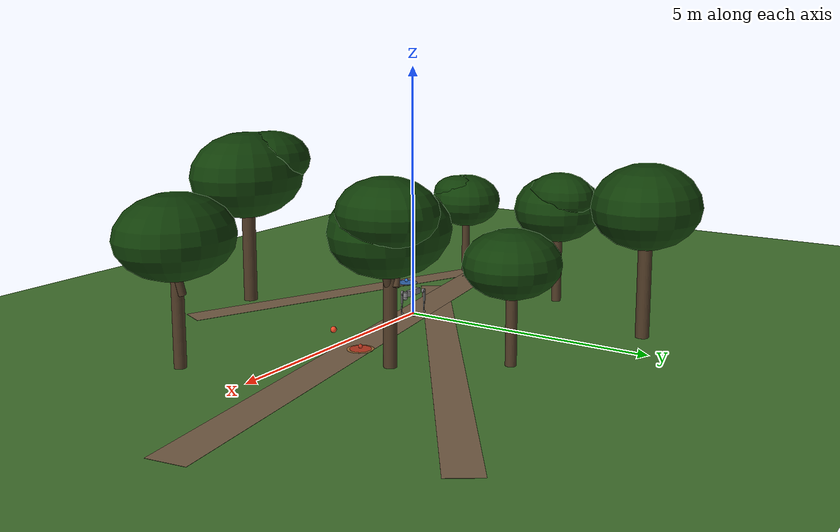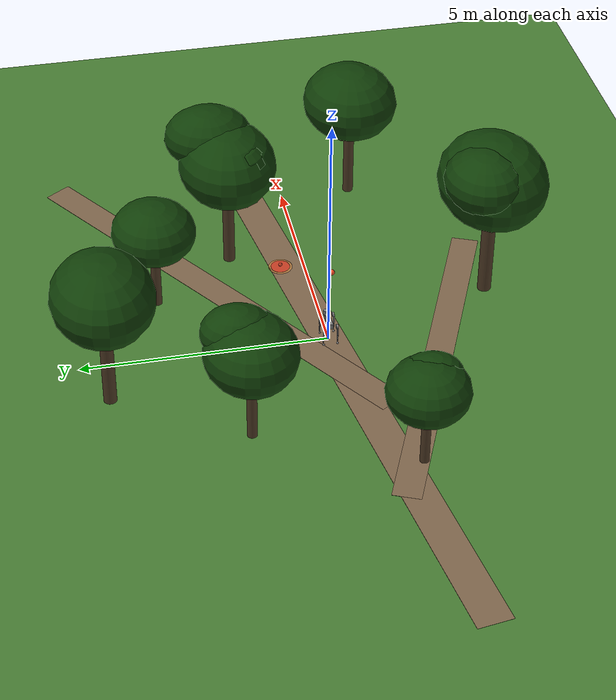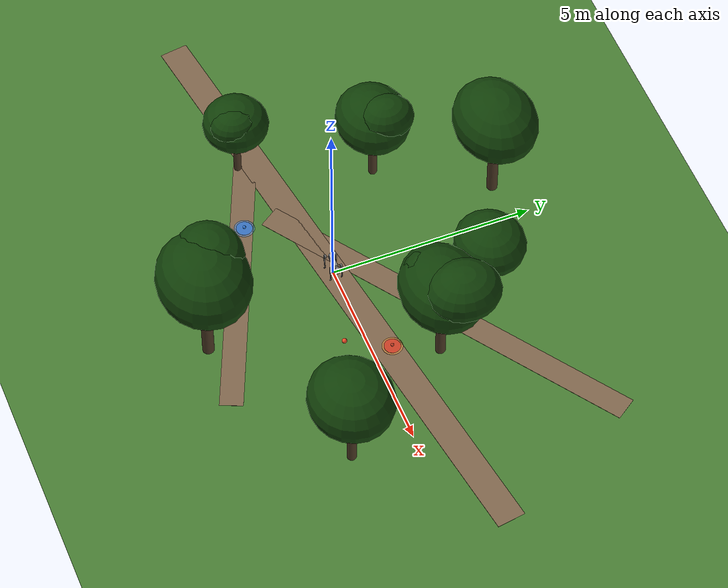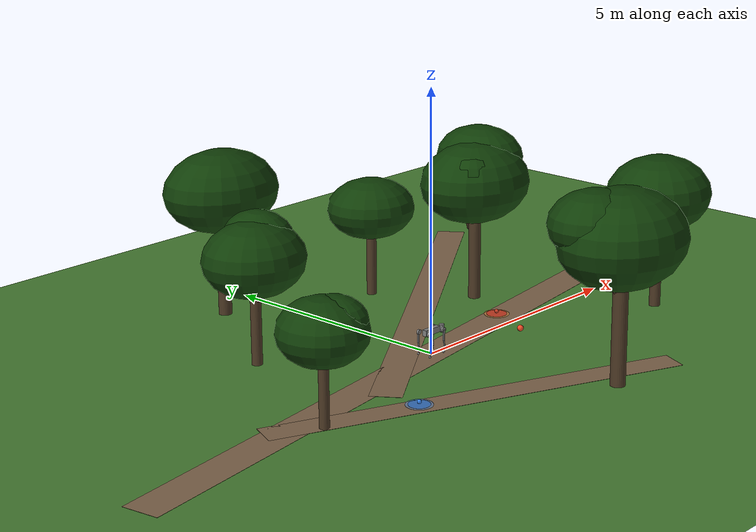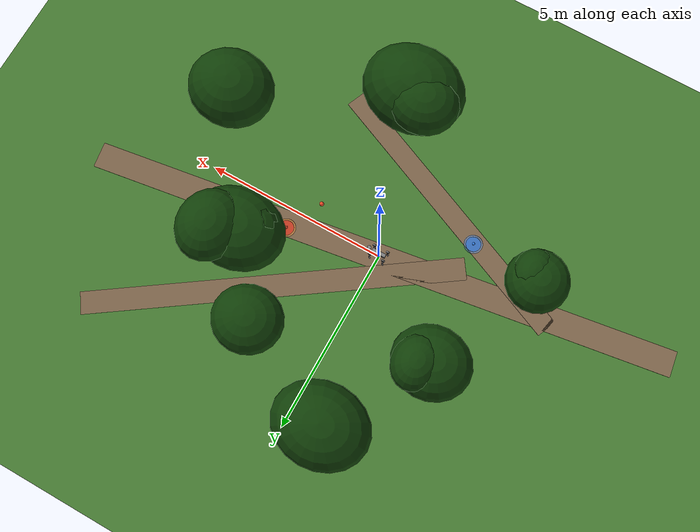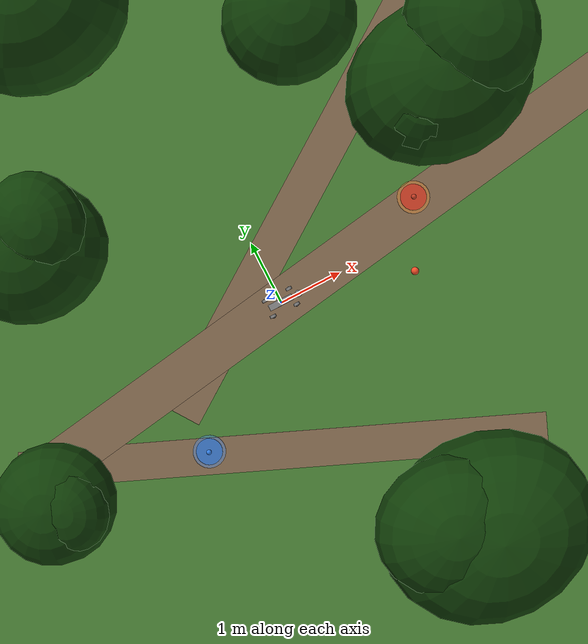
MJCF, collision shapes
<?xml version="1.0" encoding="utf-8"?>
<mujoco model="go2_outdoor">
  <!-- meshdir points to go2/assets where the .obj files live -->
  <compiler angle="radian" meshdir="go2/assets" autolimits="true"/>

  <include file="go2/go2.xml"/>

  <option timestep="0.002" gravity="0 0 -9.81" integrator="implicitfast">
    <flag contact="enable"/>
  </option>

  <statistic center="0 0 0.5" extent="6"/>

  <visual>
    <headlight diffuse="0.3 0.3 0.3" ambient="0.2 0.2 0.2" specular="0.1 0.1 0.1"/>
    <rgba haze="0.35 0.45 0.35 1"/>
    <quality shadowsize="4096"/>
    <map znear="0.01" zfar="100" haze="0.3"/>
    <global azimuth="-140" elevation="-25" offwidth="1920" offheight="1080"/>
  </visual>

  <asset>
    <!-- Sky -->
    <texture type="skybox" builtin="gradient" rgb1="0.45 0.60 0.80" rgb2="0.75 0.85 0.95"
      width="512" height="3072"/>

    <!-- Grass ground -->
    <texture name="grass_tex" type="2d" builtin="flat" rgb1="0.28 0.49 0.20" rgb2="0.22 0.42 0.16"
      width="512" height="512" mark="random" markrgb="0.32 0.55 0.24" random="0.05"/>
    <material name="grass_mat" texture="grass_tex" texrepeat="30 30" texuniform="false"
      reflectance="0.05" rgba="1 1 1 1"/>

    <!-- Dirt path -->
    <texture name="dirt_tex" type="2d" builtin="flat" rgb1="0.50 0.40 0.30" rgb2="0.45 0.36 0.28"
      width="256" height="256" mark="random" markrgb="0.55 0.45 0.35" random="0.08"/>
    <material name="dirt_mat" texture="dirt_tex" texrepeat="8 8" reflectance="0.02"/>

    <!-- Tree bark -->
    <texture name="bark_tex" type="2d" builtin="flat" rgb1="0.30 0.22 0.14" rgb2="0.25 0.18 0.12"
      width="128" height="128" mark="random" markrgb="0.35 0.25 0.16" random="0.1"/>
    <material name="bark_mat" texture="bark_tex" texrepeat="2 4" reflectance="0.03"/>

    <!-- Leaves / canopy -->
    <texture name="leaf_tex" type="2d" builtin="flat" rgb1="0.22 0.45 0.15" rgb2="0.18 0.38 0.12"
      width="256" height="256" mark="random" markrgb="0.28 0.52 0.20" random="0.15"/>
    <material name="leaf_mat" texture="leaf_tex" texrepeat="3 3" reflectance="0.08"
      rgba="0.30 0.55 0.22 0.92"/>

    <!-- Goal/waypoint marker -->
    <material name="marker_mat" rgba="0.9 0.25 0.15 0.8" reflectance="0.3" shininess="0.5"/>
    <material name="marker_glow_mat" rgba="1.0 0.6 0.2 0.4" reflectance="0.1"/>
  </asset>

  <worldbody>
    <!-- ============== LIGHTING ============== -->
    <!-- Sun - warm directional light -->
    <light name="sun" pos="5 -3 8" dir="-0.4 0.3 -0.8" diffuse="1.0 0.95 0.85"
      specular="0.4 0.38 0.35" directional="true" castshadow="true"/>
    <!-- Ambient fill -->
    <light name="fill" pos="-3 4 5" dir="0.3 -0.3 -0.7" diffuse="0.25 0.30 0.35"
      specular="0.05 0.05 0.05" directional="true" castshadow="false"/>

    <!-- ============== TERRAIN ============== -->
    <!-- Main grass ground plane -->
    <geom name="ground" type="plane" size="15 15 0.5" material="grass_mat"
      friction="1.0 0.005 0.0001" pos="0 0 0"/>

    <!-- Dirt path - winding through the scene -->
    <geom name="path_1" type="box" pos="0 0 0.002" size="8 0.35 0.002" material="dirt_mat"
      euler="0 0 0.15" contype="1" conaffinity="1" friction="0.8 0.005 0.0001"/>
    <geom name="path_2" type="box" pos="2 2 0.002" size="5 0.30 0.002" material="dirt_mat"
      euler="0 0 0.6" contype="1" conaffinity="1" friction="0.8 0.005 0.0001"/>
    <geom name="path_3" type="box" pos="-1 -2 0.002" size="4 0.28 0.002" material="dirt_mat"
      euler="0 0 -0.4" contype="1" conaffinity="1" friction="0.8 0.005 0.0001"/>

    <!-- ============== TREES ============== -->
    <!-- Each tree: trunk (cylinder) + canopy (ellipsoid/sphere) -->

    <!-- Tree 1 - Large, right side -->
    <body name="tree_1" pos="3.0 1.5 0">
      <geom name="trunk_1" type="cylinder" size="0.12 0.9" pos="0 0 0.9"
        material="bark_mat" contype="1" conaffinity="1"/>
      <geom name="trunk_1b" type="cylinder" size="0.08 0.4" pos="0.15 0 1.8"
        euler="0 0.3 0" material="bark_mat" contype="0" conaffinity="0"/>
      <geom name="trunk_1c" type="cylinder" size="0.06 0.3" pos="-0.1 0.08 1.7"
        euler="0.2 -0.4 0" material="bark_mat" contype="0" conaffinity="0"/>
      <geom name="canopy_1a" type="ellipsoid" size="1.2 1.0 0.8" pos="0 0 2.4"
        material="leaf_mat" contype="0" conaffinity="0"/>
      <geom name="canopy_1b" type="ellipsoid" size="0.8 0.9 0.6" pos="0.5 0.3 2.8"
        material="leaf_mat" contype="0" conaffinity="0"/>
      <geom name="canopy_1c" type="ellipsoid" size="0.7 0.6 0.5" pos="-0.3 -0.2 2.6"
        material="leaf_mat" contype="0" conaffinity="0"/>
    </body>

    <!-- Tree 2 - Medium, left side -->
    <body name="tree_2" pos="-2.5 2.0 0">
      <geom name="trunk_2" type="cylinder" size="0.10 0.75" pos="0 0 0.75"
        material="bark_mat" contype="1" conaffinity="1"/>
      <geom name="trunk_2b" type="cylinder" size="0.06 0.3" pos="0.08 -0.05 1.5"
        euler="0 0.25 0.5" material="bark_mat" contype="0" conaffinity="0"/>
      <geom name="canopy_2a" type="ellipsoid" size="1.0 0.9 0.7" pos="0 0 2.0"
        material="leaf_mat" contype="0" conaffinity="0"/>
      <geom name="canopy_2b" type="ellipsoid" size="0.6 0.7 0.5" pos="0.3 0.2 2.3"
        material="leaf_mat" contype="0" conaffinity="0"/>
    </body>

    <!-- Tree 3 - Far background -->
    <body name="tree_3" pos="1.0 -3.5 0">
      <geom name="trunk_3" type="cylinder" size="0.14 1.0" pos="0 0 1.0"
        material="bark_mat" contype="1" conaffinity="1"/>
      <geom name="trunk_3b" type="cylinder" size="0.07 0.35" pos="-0.12 0 1.9"
        euler="0.15 -0.3 0" material="bark_mat" contype="0" conaffinity="0"/>
      <geom name="canopy_3a" type="ellipsoid" size="1.3 1.1 0.9" pos="0 0 2.7"
        material="leaf_mat" contype="0" conaffinity="0"/>
      <geom name="canopy_3b" type="ellipsoid" size="0.9 0.8 0.6" pos="-0.4 0.3 3.0"
        material="leaf_mat" contype="0" conaffinity="0"/>
    </body>

    <!-- Tree 4 - Near left -->
    <body name="tree_4" pos="-3.8 -1.0 0">
      <geom name="trunk_4" type="cylinder" size="0.09 0.65" pos="0 0 0.65"
        material="bark_mat" contype="1" conaffinity="1"/>
      <geom name="canopy_4a" type="ellipsoid" size="0.8 0.8 0.6" pos="0 0 1.7"
        material="leaf_mat" contype="0" conaffinity="0"/>
      <geom name="canopy_4b" type="ellipsoid" size="0.5 0.6 0.4" pos="0.2 -0.1 1.9"
        material="leaf_mat" contype="0" conaffinity="0"/>
    </body>

    <!-- Tree 5 - Far right background -->
    <body name="tree_5" pos="5.0 -1.5 0">
      <geom name="trunk_5" type="cylinder" size="0.11 0.85" pos="0 0 0.85"
        material="bark_mat" contype="1" conaffinity="1"/>
      <geom name="trunk_5b" type="cylinder" size="0.07 0.4" pos="0.1 0.1 1.7"
        euler="0.1 0.2 0.3" material="bark_mat" contype="0" conaffinity="0"/>
      <geom name="canopy_5a" type="ellipsoid" size="1.1 1.0 0.75" pos="0 0 2.3"
        material="leaf_mat" contype="0" conaffinity="0"/>
    </body>

    <!-- Tree 6 - Background cluster -->
    <body name="tree_6" pos="-1.0 4.5 0">
      <geom name="trunk_6" type="cylinder" size="0.13 0.95" pos="0 0 0.95"
        material="bark_mat" contype="1" conaffinity="1"/>
      <geom name="canopy_6a" type="ellipsoid" size="1.2 1.0 0.8" pos="0 0 2.5"
        material="leaf_mat" contype="0" conaffinity="0"/>
    </body>

    <!-- Tree 7 - Near the robot start area -->
    <body name="tree_7" pos="1.8 3.2 0">
      <geom name="trunk_7" type="cylinder" size="0.10 0.7" pos="0 0 0.7"
        material="bark_mat" contype="1" conaffinity="1"/>
      <geom name="canopy_7a" type="ellipsoid" size="0.9 0.85 0.6" pos="0 0 1.8"
        material="leaf_mat" contype="0" conaffinity="0"/>
    </body>

    <!-- ============== WAYPOINT MARKERS ============== -->
    <!-- These can be repositioned programmatically for different tasks -->
    <body name="waypoint_A" pos="2.5 0.5 0">
      <geom name="wp_a_ring" type="cylinder" size="0.2 0.005" pos="0 0 0.01"
        material="marker_mat" contype="0" conaffinity="0"/>
      <geom name="wp_a_glow" type="cylinder" size="0.25 0.003" pos="0 0 0.005"
        material="marker_glow_mat" contype="0" conaffinity="0"/>
      <geom name="wp_a_center" type="sphere" size="0.04" pos="0 0 0.06"
        material="marker_mat" contype="0" conaffinity="0"/>
    </body>

    <body name="waypoint_B" pos="-2.0 -1.5 0">
      <geom name="wp_b_ring" type="cylinder" size="0.2 0.005" pos="0 0 0.01"
        rgba="0.2 0.5 0.9 0.8" contype="0" conaffinity="0"/>
      <geom name="wp_b_glow" type="cylinder" size="0.25 0.003" pos="0 0 0.005"
        rgba="0.3 0.6 1.0 0.4" contype="0" conaffinity="0"/>
      <geom name="wp_b_center" type="sphere" size="0.04" pos="0 0 0.06"
        rgba="0.2 0.5 0.9 0.9" contype="0" conaffinity="0"/>
    </body>

    <!-- ============== SMALL OBJECTS ============== -->
    <!-- Ball for "fetch" tasks -->
    <body name="ball" pos="2.0 -0.5 0.08">
      <freejoint name="ball_joint"/>
      <geom name="ball_geom" type="sphere" size="0.06" mass="0.1"
        rgba="0.95 0.3 0.15 1" friction="0.8 0.02 0.01"/>
    </body>
  </worldbody>

  <sensor>
    <!-- Robot base sensors -->
    <framepos name="base_pos" objtype="body" objname="base"/>
    <framequat name="base_quat" objtype="body" objname="base"/>
    <framelinvel name="base_linvel" objtype="body" objname="base"/>
    <frameangvel name="base_angvel" objtype="body" objname="base"/>
    <!-- Foot contact sensors -->
    <touch name="FL_foot_touch" site="imu"/>
  </sensor>
</mujoco>

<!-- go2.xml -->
<mujoco model="go2">
  <!-- meshdir set to go2/assets for resolution from parent scene XML -->
  <compiler angle="radian" meshdir="go2/assets" autolimits="true"/>

  <option cone="elliptic" impratio="100"/>

  <default>
    <default class="go2">
      <geom friction="0.6" margin="0.001" condim="1"/>
      <joint axis="0 1 0" damping="2" armature="0.01" frictionloss="0.2"/>
      <motor ctrlrange="-23.7 23.7"/>
      <default class="abduction">
        <joint axis="1 0 0" range="-1.0472 1.0472"/>
      </default>
      <default class="hip">
        <default class="front_hip">
          <joint range="-1.5708 3.4907"/>
        </default>
        <default class="back_hip">
          <joint range="-0.5236 4.5379"/>
        </default>
      </default>
      <default class="knee">
        <joint range="-2.7227 -0.83776"/>
        <motor ctrlrange="-45.43 45.43"/>
      </default>
      <default class="visual">
        <geom type="mesh" contype="0" conaffinity="0" group="2"/>
      </default>
      <default class="collision">
        <geom group="3"/>
        <default class="foot">
          <geom size="0.022" pos="-0.002 0 -0.213" priority="1" solimp="0.015 1 0.022" condim="6"
            friction="0.8 0.02 0.01"/>
        </default>
      </default>
    </default>
  </default>

  <asset>
    <material name="metal" rgba=".9 .95 .95 1"/>
    <material name="black" rgba="0 0 0 1"/>
    <material name="white" rgba="1 1 1 1"/>
    <material name="gray" rgba="0.671705 0.692426 0.774270 1"/>

    <mesh file="base_0.obj"/>
    <mesh file="base_1.obj"/>
    <mesh file="base_2.obj"/>
    <mesh file="base_3.obj"/>
    <mesh file="base_4.obj"/>
    <mesh file="hip_0.obj"/>
    <mesh file="hip_1.obj"/>
    <mesh file="thigh_0.obj"/>
    <mesh file="thigh_1.obj"/>
    <mesh file="thigh_mirror_0.obj"/>
    <mesh file="thigh_mirror_1.obj"/>
    <mesh file="calf_0.obj"/>
    <mesh file="calf_1.obj"/>
    <mesh file="calf_mirror_0.obj"/>
    <mesh file="calf_mirror_1.obj"/>
    <mesh file="foot.obj"/>
  </asset>

  <worldbody>
    <body name="base" pos="0 0 0.445" childclass="go2">
      <inertial pos="0.021112 0 -0.005366" quat="-0.000543471 0.713435 -0.00173769 0.700719" mass="6.921"
        diaginertia="0.107027 0.0980771 0.0244531"/>
      <freejoint/>
      <geom mesh="base_0" material="black" class="visual"/>
      <geom mesh="base_1" material="black" class="visual"/>
      <geom mesh="base_2" material="black" class="visual"/>
      <geom mesh="base_3" material="white" class="visual"/>
      <geom mesh="base_4" material="gray" class="visual"/>
      <geom size="0.1881 0.04675 0.057" type="box" class="collision"/>
      <geom size="0.05 0.045" pos="0.285 0 0.01" type="cylinder" class="collision"/>
      <geom size="0.047" pos="0.293 0 -0.06" class="collision"/>
      <site name="imu" pos="-0.02557 0 0.04232"/>
      <body name="FL_hip" pos="0.1934 0.0465 0">
        <inertial pos="-0.0054 0.00194 -0.000105" quat="0.497014 0.499245 0.505462 0.498237" mass="0.678"
          diaginertia="0.00088403 0.000596003 0.000479967"/>
        <joint name="FL_hip_joint" class="abduction"/>
        <geom mesh="hip_0" material="metal" class="visual"/>
        <geom mesh="hip_1" material="gray" class="visual"/>
        <geom size="0.046 0.02" pos="0 0.08 0" quat="1 1 0 0" type="cylinder" class="collision"/>
        <body name="FL_thigh" pos="0 0.0955 0">
          <inertial pos="-0.00374 -0.0223 -0.0327" quat="0.829533 0.0847635 -0.0200632 0.551623" mass="1.152"
            diaginertia="0.00594973 0.00584149 0.000878787"/>
          <joint name="FL_thigh_joint" class="front_hip"/>
          <geom mesh="thigh_0" material="metal" class="visual"/>
          <geom mesh="thigh_1" material="gray" class="visual"/>
          <geom size="0.1065 0.01225 0.017" pos="0 0 -0.1065" quat="0.707107 0 0.707107 0" type="box" class="collision"/>
          <body name="FL_calf" pos="0 0 -0.213">
            <inertial pos="0.00629595 -0.000622121 -0.141417" quat="0.710672 0.00154099 -0.00450087 0.703508"
              mass="0.241352" diaginertia="0.0014901 0.00146356 5.31397e-05"/>
            <joint name="FL_calf_joint" class="knee"/>
            <geom mesh="calf_0" material="gray" class="visual"/>
            <geom mesh="calf_1" material="black" class="visual"/>
            <geom size="0.012 0.06" pos="0.008 0 -0.06" quat="0.994493 0 -0.104807 0" type="cylinder" class="collision"/>
            <geom size="0.011 0.0325" pos="0.02 0 -0.148" quat="0.999688 0 0.0249974 0" type="cylinder" class="collision"/>
            <geom pos="0 0 -0.213" mesh="foot" class="visual" material="black"/>
            <geom name="FL" class="foot"/>
          </body>
        </body>
      </body>
      <body name="FR_hip" pos="0.1934 -0.0465 0">
        <inertial pos="-0.0054 -0.00194 -0.000105" quat="0.498237 0.505462 0.499245 0.497014" mass="0.678"
          diaginertia="0.00088403 0.000596003 0.000479967"/>
        <joint name="FR_hip_joint" class="abduction"/>
        <geom mesh="hip_0" material="metal" class="visual" quat="4.63268e-05 1 0 0"/>
        <geom mesh="hip_1" material="gray" class="visual" quat="4.63268e-05 1 0 0"/>
        <geom size="0.046 0.02" pos="0 -0.08 0" quat="0.707107 0.707107 0 0" type="cylinder" class="collision"/>
        <body name="FR_thigh" pos="0 -0.0955 0">
          <inertial pos="-0.00374 0.0223 -0.0327" quat="0.551623 -0.0200632 0.0847635 0.829533" mass="1.152"
            diaginertia="0.00594973 0.00584149 0.000878787"/>
          <joint name="FR_thigh_joint" class="front_hip"/>
          <geom mesh="thigh_mirror_0" material="metal" class="visual"/>
          <geom mesh="thigh_mirror_1" material="gray" class="visual"/>
          <geom size="0.1065 0.01225 0.017" pos="0 0 -0.1065" quat="0.707107 0 0.707107 0" type="box" class="collision"/>
          <body name="FR_calf" pos="0 0 -0.213">
            <inertial pos="0.00629595 0.000622121 -0.141417" quat="0.703508 -0.00450087 0.00154099 0.710672"
              mass="0.241352" diaginertia="0.0014901 0.00146356 5.31397e-05"/>
            <joint name="FR_calf_joint" class="knee"/>
            <geom mesh="calf_mirror_0" material="gray" class="visual"/>
            <geom mesh="calf_mirror_1" material="black" class="visual"/>
            <geom size="0.013 0.06" pos="0.01 0 -0.06" quat="0.995004 0 -0.0998334 0" type="cylinder" class="collision"/>
            <geom size="0.011 0.0325" pos="0.02 0 -0.148" quat="0.999688 0 0.0249974 0" type="cylinder" class="collision"/>
            <geom pos="0 0 -0.213" mesh="foot" class="visual" material="black"/>
            <geom name="FR" class="foot"/>
          </body>
        </body>
      </body>
      <body name="RL_hip" pos="-0.1934 0.0465 0">
        <inertial pos="0.0054 0.00194 -0.000105" quat="0.505462 0.498237 0.497014 0.499245" mass="0.678"
          diaginertia="0.00088403 0.000596003 0.000479967"/>
        <joint name="RL_hip_joint" class="abduction"/>
        <geom mesh="hip_0" material="metal" class="visual" quat="4.63268e-05 0 1 0"/>
        <geom mesh="hip_1" material="gray" class="visual" quat="4.63268e-05 0 1 0"/>
        <geom size="0.046 0.02" pos="0 0.08 0" quat="0.707107 0.707107 0 0" type="cylinder" class="collision"/>
        <body name="RL_thigh" pos="0 0.0955 0">
          <inertial pos="-0.00374 -0.0223 -0.0327" quat="0.829533 0.0847635 -0.0200632 0.551623" mass="1.152"
            diaginertia="0.00594973 0.00584149 0.000878787"/>
          <joint name="RL_thigh_joint" class="back_hip"/>
          <geom mesh="thigh_0" material="metal" class="visual"/>
          <geom mesh="thigh_1" material="gray" class="visual"/>
          <geom size="0.1065 0.01225 0.017" pos="0 0 -0.1065" quat="0.707107 0 0.707107 0" type="box" class="collision"/>
          <body name="RL_calf" pos="0 0 -0.213">
            <inertial pos="0.00629595 -0.000622121 -0.141417" quat="0.710672 0.00154099 -0.00450087 0.703508"
              mass="0.241352" diaginertia="0.0014901 0.00146356 5.31397e-05"/>
            <joint name="RL_calf_joint" class="knee"/>
            <geom mesh="calf_0" material="gray" class="visual"/>
            <geom mesh="calf_1" material="black" class="visual"/>
            <geom size="0.013 0.06" pos="0.01 0 -0.06" quat="0.995004 0 -0.0998334 0" type="cylinder" class="collision"/>
            <geom size="0.011 0.0325" pos="0.02 0 -0.148" quat="0.999688 0 0.0249974 0" type="cylinder" class="collision"/>
            <geom pos="0 0 -0.213" mesh="foot" class="visual" material="black"/>
            <geom name="RL" class="foot"/>
          </body>
        </body>
      </body>
      <body name="RR_hip" pos="-0.1934 -0.0465 0">
        <inertial pos="0.0054 -0.00194 -0.000105" quat="0.499245 0.497014 0.498237 0.505462" mass="0.678"
          diaginertia="0.00088403 0.000596003 0.000479967"/>
        <joint name="RR_hip_joint" class="abduction"/>
        <geom mesh="hip_0" material="metal" class="visual" quat="2.14617e-09 4.63268e-05 4.63268e-05 -1"/>
        <geom mesh="hip_1" material="gray" class="visual" quat="2.14617e-09 4.63268e-05 4.63268e-05 -1"/>
        <geom size="0.046 0.02" pos="0 -0.08 0" quat="0.707107 0.707107 0 0" type="cylinder" class="collision"/>
        <body name="RR_thigh" pos="0 -0.0955 0">
          <inertial pos="-0.00374 0.0223 -0.0327" quat="0.551623 -0.0200632 0.0847635 0.829533" mass="1.152"
            diaginertia="0.00594973 0.00584149 0.000878787"/>
          <joint name="RR_thigh_joint" class="back_hip"/>
          <geom mesh="thigh_mirror_0" material="metal" class="visual"/>
          <geom mesh="thigh_mirror_1" material="gray" class="visual"/>
          <geom size="0.1065 0.01225 0.017" pos="0 0 -0.1065" quat="0.707107 0 0.707107 0" type="box" class="collision"/>
          <body name="RR_calf" pos="0 0 -0.213">
            <inertial pos="0.00629595 0.000622121 -0.141417" quat="0.703508 -0.00450087 0.00154099 0.710672"
              mass="0.241352" diaginertia="0.0014901 0.00146356 5.31397e-05"/>
            <joint name="RR_calf_joint" class="knee"/>
            <geom mesh="calf_mirror_0" material="gray" class="visual"/>
            <geom mesh="calf_mirror_1" material="black" class="visual"/>
            <geom size="0.013 0.06" pos="0.01 0 -0.06" quat="0.995004 0 -0.0998334 0" type="cylinder" class="collision"/>
            <geom size="0.011 0.0325" pos="0.02 0 -0.148" quat="0.999688 0 0.0249974 0" type="cylinder" class="collision"/>
            <geom pos="0 0 -0.213" mesh="foot" class="visual" material="black"/>
            <geom name="RR" class="foot"/>
          </body>
        </body>
      </body>
    </body>
  </worldbody>

  <actuator>
    <motor class="abduction" name="FL_hip" joint="FL_hip_joint"/>
    <motor class="hip" name="FL_thigh" joint="FL_thigh_joint"/>
    <motor class="knee" name="FL_calf" joint="FL_calf_joint"/>
    <motor class="abduction" name="FR_hip" joint="FR_hip_joint"/>
    <motor class="hip" name="FR_thigh" joint="FR_thigh_joint"/>
    <motor class="knee" name="FR_calf" joint="FR_calf_joint"/>
    <motor class="abduction" name="RL_hip" joint="RL_hip_joint"/>
    <motor class="hip" name="RL_thigh" joint="RL_thigh_joint"/>
    <motor class="knee" name="RL_calf" joint="RL_calf_joint"/>
    <motor class="abduction" name="RR_hip" joint="RR_hip_joint"/>
    <motor class="hip" name="RR_thigh" joint="RR_thigh_joint"/>
    <motor class="knee" name="RR_calf" joint="RR_calf_joint"/>
  </actuator>

  <keyframe>
    <key name="home" qpos="0 0 0.27 1 0 0 0 0 0.9 -1.8 0 0.9 -1.8 0 0.9 -1.8 0 0.9 -1.8"
      ctrl="0 0.9 -1.8 0 0.9 -1.8 0 0.9 -1.8 0 0.9 -1.8"/>
  </keyframe>
</mujoco>
